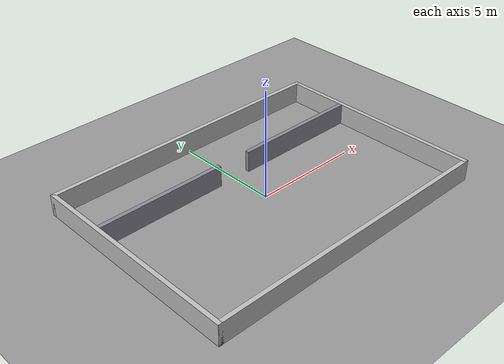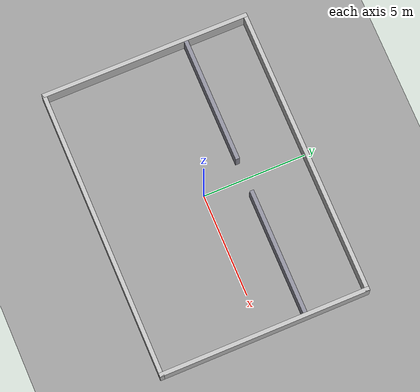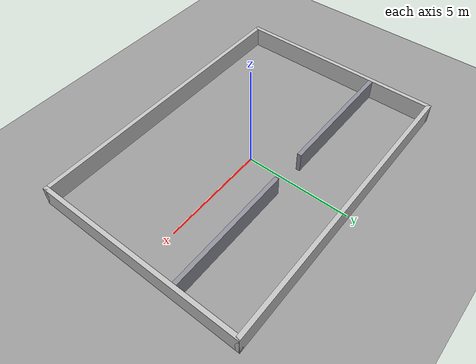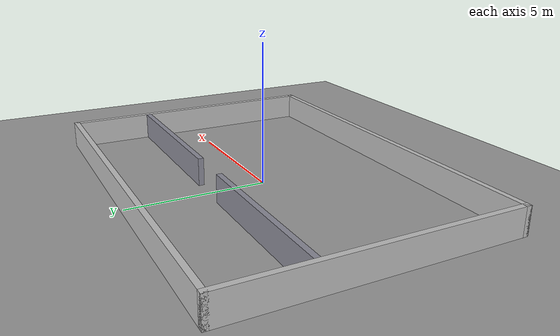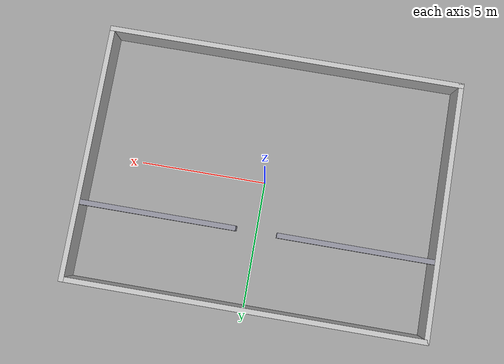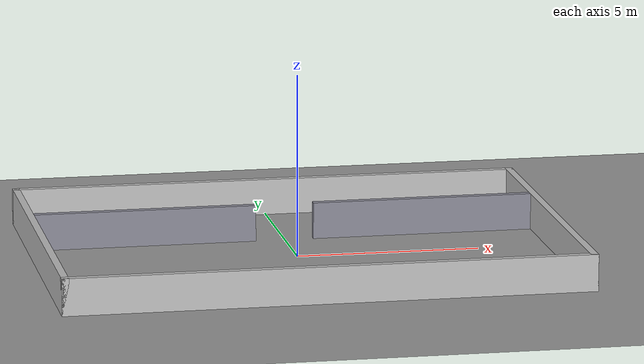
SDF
<?xml version="1.0"?>
<sdf version="1.9">
  <world name="multi_obstacle_arena">

    <physics name="1ms" type="ode">
      <max_step_size>0.001</max_step_size>
      <real_time_factor>1.0</real_time_factor>
    </physics>

    <plugin filename="gz-sim-physics-system" name="gz::sim::systems::Physics"/>
    <plugin filename="gz-sim-user-commands-system" name="gz::sim::systems::UserCommands"/>
    <plugin filename="gz-sim-scene-broadcaster-system" name="gz::sim::systems::SceneBroadcaster"/>
    <plugin filename="gz-sim-sensors-system" name="gz::sim::systems::Sensors">
      <render_engine>ogre2</render_engine>
    </plugin>
    <plugin filename="gz-sim-imu-system" name="gz::sim::systems::Imu"/>

    <gravity>0 0 -9.8</gravity>

    <light type="directional" name="sun">
      <cast_shadows>true</cast_shadows>
      <pose>0 0 10 0 0 0</pose>
      <diffuse>0.8 0.8 0.8 1</diffuse>
      <specular>0.2 0.2 0.2 1</specular>
      <attenuation>
        <range>1000</range>
        <constant>0.9</constant>
        <linear>0.01</linear>
        <quadratic>0.001</quadratic>
      </attenuation>
      <direction>-0.5 0.1 -0.9</direction>
    </light>

    <model name="ground_plane">
      <static>true</static>
      <link name="link">
        <collision name="collision">
          <geometry><plane><normal>0 0 1</normal><size>100 100</size></plane></geometry>
          <surface><friction><ode><mu>0.8</mu><mu2>0.8</mu2></ode></friction></surface>
        </collision>
        <visual name="visual">
          <geometry><plane><normal>0 0 1</normal><size>100 100</size></plane></geometry>
          <material><ambient>0.6 0.6 0.6 1</ambient><diffuse>0.6 0.6 0.6 1</diffuse></material>
        </visual>
      </link>
    </model>

    <!-- Outer boundary: 14m (x) x 10m (y) arena, wall thickness 0.2m, height 1.0m -->
    <model name="wall_west">
      <static>true</static>
      <pose>-7 0 0.5 0 0 0</pose>
      <link name="link">
        <collision name="collision"><geometry><box><size>0.2 10.2 1.0</size></box></geometry></collision>
        <visual name="visual"><geometry><box><size>0.2 10.2 1.0</size></box></geometry>
          <material><ambient>0.75 0.75 0.75 1</ambient><diffuse>0.75 0.75 0.75 1</diffuse></material></visual>
      </link>
    </model>
    <model name="wall_east">
      <static>true</static>
      <pose>7 0 0.5 0 0 0</pose>
      <link name="link">
        <collision name="collision"><geometry><box><size>0.2 10.2 1.0</size></box></geometry></collision>
        <visual name="visual"><geometry><box><size>0.2 10.2 1.0</size></box></geometry>
          <material><ambient>0.75 0.75 0.75 1</ambient><diffuse>0.75 0.75 0.75 1</diffuse></material></visual>
      </link>
    </model>
    <model name="wall_north">
      <static>true</static>
      <pose>0 5 0.5 0 0 0</pose>
      <link name="link">
        <collision name="collision"><geometry><box><size>14.2 0.2 1.0</size></box></geometry></collision>
        <visual name="visual"><geometry><box><size>14.2 0.2 1.0</size></box></geometry>
          <material><ambient>0.75 0.75 0.75 1</ambient><diffuse>0.75 0.75 0.75 1</diffuse></material></visual>
      </link>
    </model>
    <model name="wall_south">
      <static>true</static>
      <pose>0 -5 0.5 0 0 0</pose>
      <link name="link">
        <collision name="collision"><geometry><box><size>14.2 0.2 1.0</size></box></geometry></collision>
        <visual name="visual"><geometry><box><size>14.2 0.2 1.0</size></box></geometry>
          <material><ambient>0.75 0.75 0.75 1</ambient><diffuse>0.75 0.75 0.75 1</diffuse></material></visual>
      </link>
    </model>

    <model name="divider_west">
      <static>true</static>
      <pose>-3.85 2 0.5 0 0 0</pose>
      <link name="link">
        <collision name="collision"><geometry><box><size>6.1 0.2 1.0</size></box></geometry></collision>
        <visual name="visual"><geometry><box><size>6.1 0.2 1.0</size></box></geometry>
          <material><ambient>0.55 0.55 0.6 1</ambient><diffuse>0.55 0.55 0.6 1</diffuse></material></visual>
      </link>
    </model>
    <model name="divider_east">
      <static>true</static>
      <pose>3.85 2 0.5 0 0 0</pose>
      <link name="link">
        <collision name="collision"><geometry><box><size>6.1 0.2 1.0</size></box></geometry></collision>
        <visual name="visual"><geometry><box><size>6.1 0.2 1.0</size></box></geometry>
          <material><ambient>0.55 0.55 0.6 1</ambient><diffuse>0.55 0.55 0.6 1</diffuse></material></visual>
      </link>
    </model>

  </world>
</sdf>
